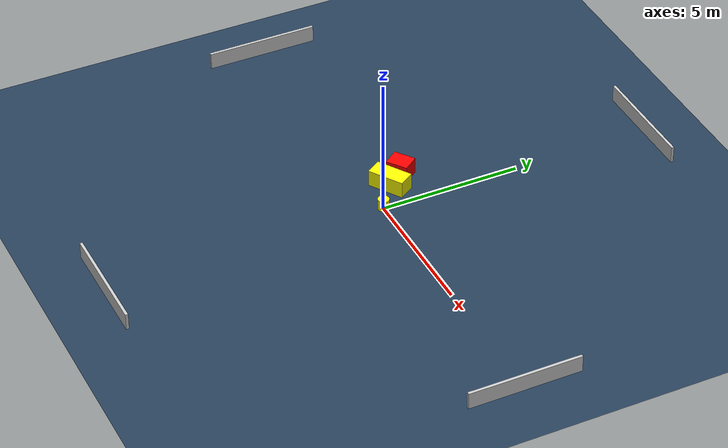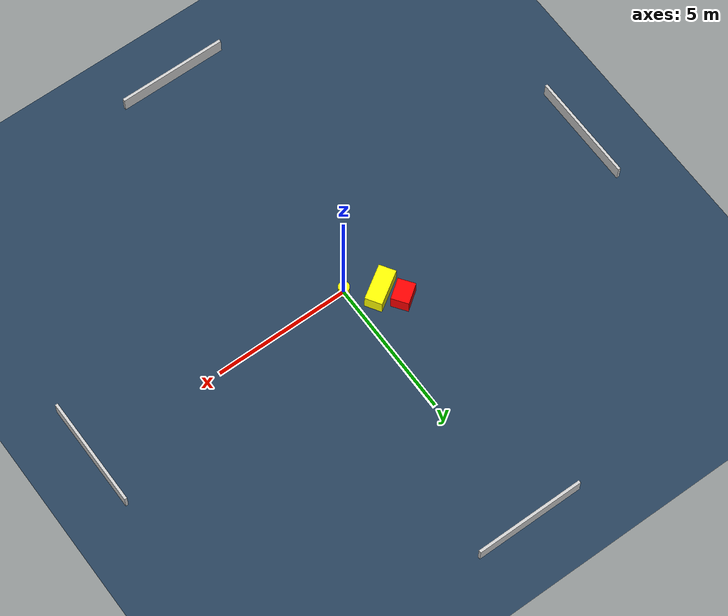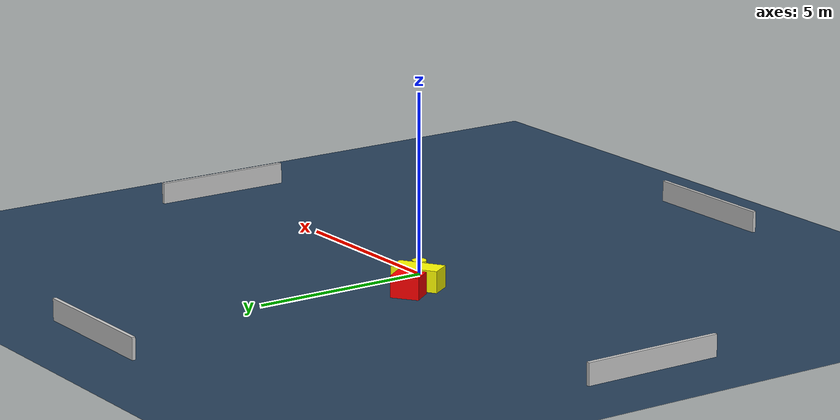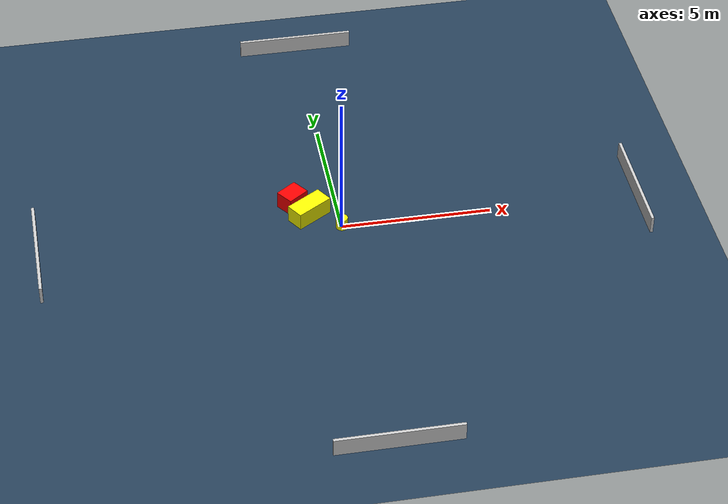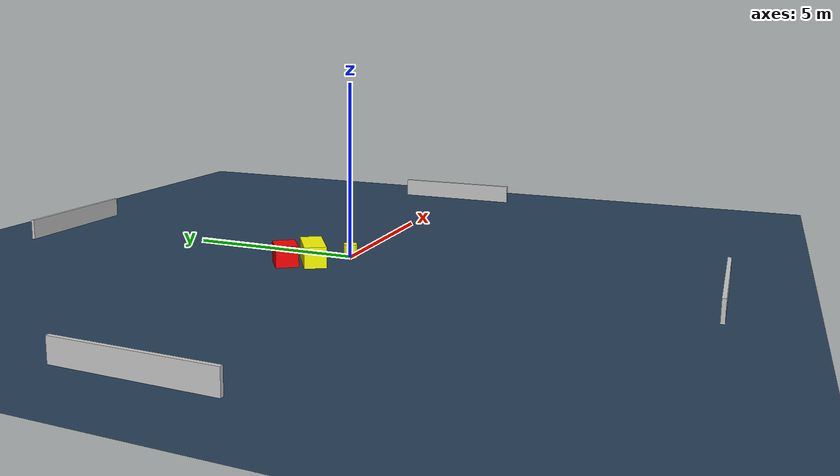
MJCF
<?xml version="1.0" ?>
<mujoco model="generated_environment">
  <option timestep="0.01" integrator="RK4" cone="elliptic"/>
  <default>
    <geom density="1"/>
  </default>
  <asset>
    <texture builtin="gradient" height="3072" name="skybox" rgb1="0.3 0.5 0.7" rgb2="0 0 0" type="skybox" width="512"/>
    <texture builtin="checker" height="300" name="groundplane" rgb1="0.2 0.3 0.4" rgb2="0.1 0.2 0.3" type="2d" width="300"/>
    <material name="groundplane" reflectance="0.2" texrepeat="5 5" texture="groundplane"/>
  </asset>
  <worldbody>
    <light dir="0 0 -1" directional="true" pos="0 0 1.5"/>
    <geom condim="3" friction="0.5 0.005 0.001" material="groundplane" name="floor" pos="0 0 0" size="0 0 0.05" type="plane"/>
    <body name="walls">
      <geom name="wall_1" condim="4" pos="-10.0 0.0 0.3" rgba="0.800000011920929 0.800000011920929 0.800000011920929 1.0" size="0.05 2.0 0.3" type="box"/>
      <geom name="wall_2" condim="4" pos="10.0 0.0 0.3" rgba="0.800000011920929 0.800000011920929 0.800000011920929 1.0" size="0.05 2.0 0.3" type="box"/>
      <geom name="wall_3" condim="4" pos="0.0 -10.0 0.3" rgba="0.800000011920929 0.800000011920929 0.800000011920929 1.0" size="2.0 0.05 0.3" type="box"/>
      <geom name="wall_4" condim="4" pos="0.0 10.0 0.3" rgba="0.800000011920929 0.800000011920929 0.800000011920929 1.0" size="2.0 0.05 0.3" type="box"/>
    </body>
    <body name="robot">
      <joint name="joint_x" type="slide" pos="0 0 0" axis="1 0 0"/>
      <joint name="joint_y" type="slide" pos="0 0 0" axis="0 1 0"/>
      <geom name="robot" type="cylinder" pos="0.0 0.0 0.2" size="0.2 0.2 0.0" mass="5.0" friction="1.0 0.005 0.0001" condim="4" rgba="1.0 1.0 0.0 1.0"/>
    </body>
    <body name="obstacle_1_movable">
      <geom name="obstacle_1_movable" condim="4" pos="-0.9708597883099669 0.716549987858226 0.3" euler="0 0 32.55967772102821" friction="0.0 0.005 0.001" rgba="1.0 1.0 0.0 1.0" size="0.6592468150130961 0.31165477127335073 0.3" type="box" mass="0.1"/>
      <joint type="free"/>
    </body>
    <body name="obstacle_2_static">
      <geom name="obstacle_2_static" condim="4" pos="-1.4379698677665658 1.3493416953248847 0.3" euler="0 0 215.8346186803756" friction="0.0 0.005 0.001" rgba="1.0 0.0 0.0 1.0" size="0.3924727676798666 0.31902234540206253 0.3" type="box"/>
    </body>
  </worldbody>
  <actuator>
    <motor name="actuator_x" joint="joint_x" gear="1" ctrlrange="-1 1"/>
    <motor name="actuator_y" joint="joint_y" gear="1" ctrlrange="-1 1"/>
  </actuator>
</mujoco>
